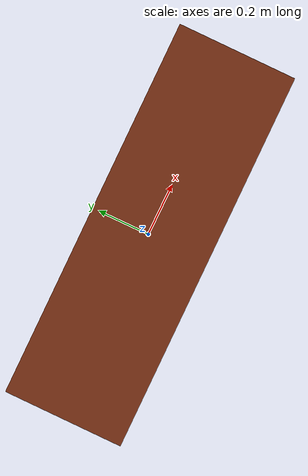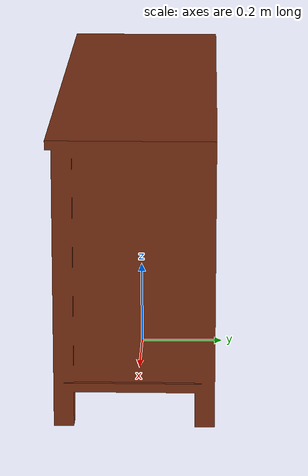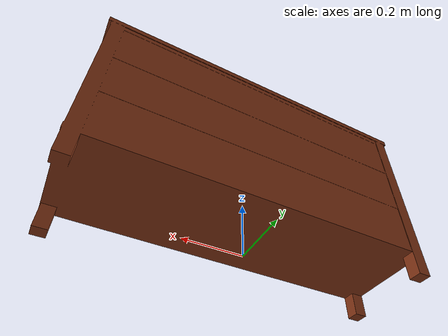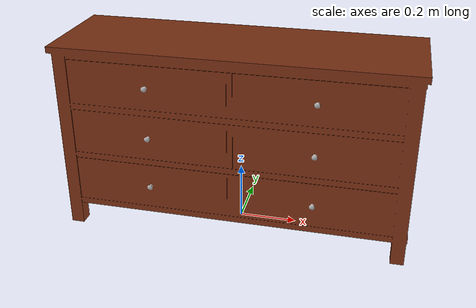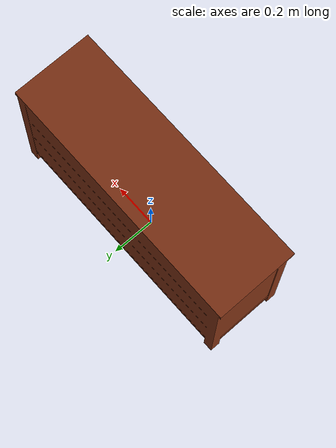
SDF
<?xml version="1.0" ?>
<sdf version="1.5">
  <model name="drawer">
    <link name="link">
      <pose>0 0 0 0 0 0</pose>
      <collision name="collision">
        <geometry>
          <mesh>
            <uri>model://drawer/meshes/model.dae</uri>
          </mesh>
        </geometry>
      </collision>
      <visual name="visual">
        <geometry>
          <mesh>
            <uri>model://drawer/meshes/model.dae</uri>
          </mesh>
        </geometry>
      </visual>
    </link>
    <static>1</static>
  </model>
</sdf>
